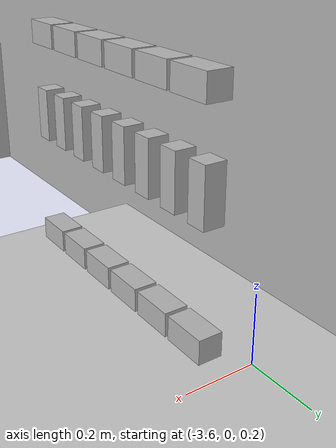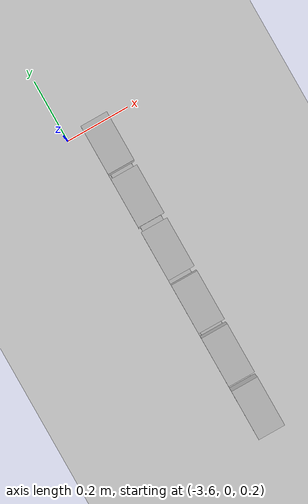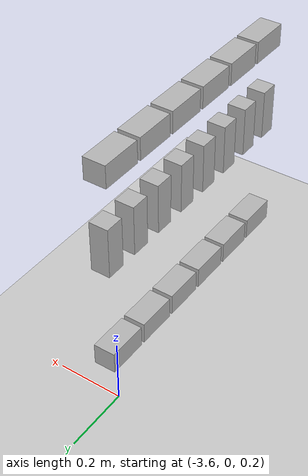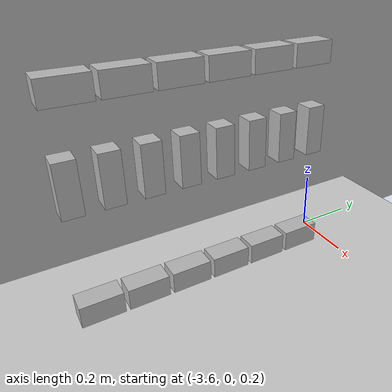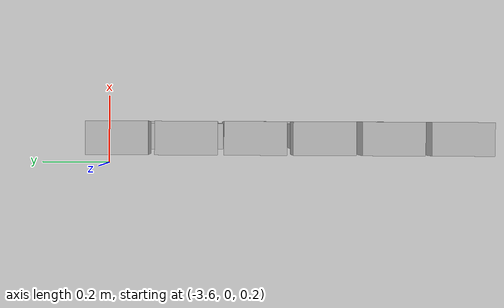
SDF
<sdf version="1.7">
 <world name="default">
  <model name="ground_plane">
   <static>1</static>
   <link name="link">
    <collision name="collision">
     <geometry><plane><normal>0 0 1</normal><size>100 100</size></plane></geometry>
     <surface>
      <contact><collide_bitmask>65535</collide_bitmask></contact>
      <friction><ode><mu>100</mu><mu2>50</mu2></ode></friction>
     </surface>
    </collision>
    <visual name="visual">
     <cast_shadows>0</cast_shadows>
     <geometry><plane><normal>0 0 1</normal><size>100 100</size></plane></geometry>
     <material>
      <script><uri>file://media/materials/scripts/gazebo.material</uri><name>Gazebo/Grey</name></script>
     </material>
    </visual>
   </link>
  </model>
  <model name="room_square">
   <link name="link_0">
    <inertial>
     <mass>1</mass>
     <inertia>
      <ixx>0.166667</ixx>
      <ixy>0</ixy>
      <ixz>0</ixz>
      <iyy>0.166667</iyy>
      <iyz>0</iyz>
      <izz>0.166667</izz>
     </inertia>
    </inertial>
    <visual name="visual">
     <geometry><mesh><uri>model://0-blender/room_square.dae</uri><scale>1 1 1</scale></mesh></geometry>
    </visual>
    <collision name="collision">
     <geometry><mesh><uri>model://0-blender/room_square.dae</uri><scale>1 1 1</scale></mesh></geometry>
     <surface>
      <friction>
       <ode><mu>1</mu><mu2>1</mu2><fdir1>0 0 0</fdir1><slip1>0</slip1><slip2>0</slip2></ode>
       <torsional>
        <coefficient>1</coefficient>
        <patch_radius>0</patch_radius>
        <surface_radius>0</surface_radius>
        <use_patch_radius>1</use_patch_radius>
        <ode><slip>0</slip></ode>
       </torsional>
      </friction>
      <bounce><restitution_coefficient>0</restitution_coefficient><threshold>1e+06</threshold></bounce>
      <contact>
       <collide_without_contact>0</collide_without_contact>
       <collide_without_contact_bitmask>1</collide_without_contact_bitmask>
       <collide_bitmask>1</collide_bitmask>
       <ode>
        <soft_cfm>0</soft_cfm>
        <soft_erp>0.2</soft_erp>
        <kp>1e+13</kp>
        <kd>1</kd>
        <max_vel>0.01</max_vel>
        <min_depth>0</min_depth>
       </ode>
       <bullet>
        <split_impulse>1</split_impulse>
        <split_impulse_penetration_threshold>-0.01</split_impulse_penetration_threshold>
        <soft_cfm>0</soft_cfm>
        <soft_erp>0.2</soft_erp>
        <kp>1e+13</kp>
        <kd>1</kd>
       </bullet>
      </contact>
     </surface>
    </collision>
   </link>
   <static>1</static>
  </model>
  <model name="AH_shelf_filled_april">
   <static>1</static>
   <model name="board3">
    <pose>0 0.5 0.9 0 -0 0</pose>
    <static>0</static>
    <link name="AH_thee_mango_tag36_11_00030::link_0">
     <inertial>
      <mass>0.1</mass>
      <inertia><ixx>0.0014</ixx><ixy>0</ixy><ixz>0</ixz><iyy>0.0014</iyy><iyz>0</iyz><izz>0.0028</izz></inertia>
     </inertial>
     <pose>0.142857 0 0 0 -0 1.57</pose>
     <visual name="visual">
      <geometry>
       <mesh>
        <uri>model://AH_thee_mango/AH_thee_mango_tag36_11_00030/AH_thee_mango_tag36_11_00030.dae</uri>
        <scale>1 1 1</scale>
       </mesh>
      </geometry>
     </visual>
     <collision name="collision">
      <geometry>
       <mesh>
        <uri>model://AH_thee_mango/AH_thee_mango_tag36_11_00030/AH_thee_mango_tag36_11_00030.dae</uri>
        <scale>1 1 1</scale>
       </mesh>
      </geometry>
      <surface>
       <friction>
        <ode><mu>1</mu><mu2>1</mu2><fdir1>0 0 0</fdir1><slip1>0</slip1><slip2>0</slip2></ode>
        <torsional>
         <coefficient>1</coefficient>
         <patch_radius>0</patch_radius>
         <surface_radius>0</surface_radius>
         <use_patch_radius>1</use_patch_radius>
         <ode><slip>0</slip></ode>
        </torsional>
       </friction>
       <bounce><restitution_coefficient>0</restitution_coefficient><threshold>1e+06</threshold></bounce>
       <contact>
        <collide_without_contact>0</collide_without_contact>
        <collide_without_contact_bitmask>1</collide_without_contact_bitmask>
        <collide_bitmask>1</collide_bitmask>
        <ode>
         <soft_cfm>0</soft_cfm>
         <soft_erp>0.2</soft_erp>
         <kp>1e+13</kp>
         <kd>1</kd>
         <max_vel>0.01</max_vel>
         <min_depth>0</min_depth>
        </ode>
        <bullet>
         <split_impulse>1</split_impulse>
         <split_impulse_penetration_threshold>-0.01</split_impulse_penetration_threshold>
         <soft_cfm>0</soft_cfm>
         <soft_erp>0.2</soft_erp>
         <kp>1e+13</kp>
         <kd>1</kd>
        </bullet>
       </contact>
      </surface>
     </collision>
    </link>
    <static>0</static>
    <link name="AH_thee_mango_tag36_11_00031::link_0">
     <inertial>
      <mass>0.1</mass>
      <inertia><ixx>0.0014</ixx><ixy>0</ixy><ixz>0</ixz><iyy>0.0014</iyy><iyz>0</iyz><izz>0.0028</izz></inertia>
     </inertial>
     <pose>0.285714 0 0 0 -0 1.57</pose>
     <visual name="visual">
      <geometry>
       <mesh>
        <uri>model://AH_thee_mango/AH_thee_mango_tag36_11_00031/AH_thee_mango_tag36_11_00031.dae</uri>
        <scale>1 1 1</scale>
       </mesh>
      </geometry>
     </visual>
     <collision name="collision">
      <geometry>
       <mesh>
        <uri>model://AH_thee_mango/AH_thee_mango_tag36_11_00031/AH_thee_mango_tag36_11_00031.dae</uri>
        <scale>1 1 1</scale>
       </mesh>
      </geometry>
      <surface>
       <friction>
        <ode><mu>1</mu><mu2>1</mu2><fdir1>0 0 0</fdir1><slip1>0</slip1><slip2>0</slip2></ode>
        <torsional>
         <coefficient>1</coefficient>
         <patch_radius>0</patch_radius>
         <surface_radius>0</surface_radius>
         <use_patch_radius>1</use_patch_radius>
         <ode><slip>0</slip></ode>
        </torsional>
       </friction>
       <bounce><restitution_coefficient>0</restitution_coefficient><threshold>1e+06</threshold></bounce>
       <contact>
        <collide_without_contact>0</collide_without_contact>
        <collide_without_contact_bitmask>1</collide_without_contact_bitmask>
        <collide_bitmask>1</collide_bitmask>
        <ode>
         <soft_cfm>0</soft_cfm>
         <soft_erp>0.2</soft_erp>
         <kp>1e+13</kp>
         <kd>1</kd>
         <max_vel>0.01</max_vel>
         <min_depth>0</min_depth>
        </ode>
        <bullet>
         <split_impulse>1</split_impulse>
         <split_impulse_penetration_threshold>-0.01</split_impulse_penetration_threshold>
         <soft_cfm>0</soft_cfm>
         <soft_erp>0.2</soft_erp>
         <kp>1e+13</kp>
         <kd>1</kd>
        </bullet>
       </contact>
      </surface>
     </collision>
    </link>
    <static>0</static>
    <link name="AH_thee_mango_tag36_11_00032::link_0">
     <inertial>
      <mass>0.1</mass>
      <inertia><ixx>0.0014</ixx><ixy>0</ixy><ixz>0</ixz><iyy>0.0014</iyy><iyz>0</iyz><izz>0.0028</izz></inertia>
     </inertial>
     <pose>0.428571 0 0 0 -0 1.57</pose>
     <visual name="visual">
      <geometry>
       <mesh>
        <uri>model://AH_thee_mango/AH_thee_mango_tag36_11_00032/AH_thee_mango_tag36_11_00032.dae</uri>
        <scale>1 1 1</scale>
       </mesh>
      </geometry>
     </visual>
     <collision name="collision">
      <geometry>
       <mesh>
        <uri>model://AH_thee_mango/AH_thee_mango_tag36_11_00032/AH_thee_mango_tag36_11_00032.dae</uri>
        <scale>1 1 1</scale>
       </mesh>
      </geometry>
      <surface>
       <friction>
        <ode><mu>1</mu><mu2>1</mu2><fdir1>0 0 0</fdir1><slip1>0</slip1><slip2>0</slip2></ode>
        <torsional>
         <coefficient>1</coefficient>
         <patch_radius>0</patch_radius>
         <surface_radius>0</surface_radius>
         <use_patch_radius>1</use_patch_radius>
         <ode><slip>0</slip></ode>
        </torsional>
       </friction>
       <bounce><restitution_coefficient>0</restitution_coefficient><threshold>1e+06</threshold></bounce>
       <contact>
        <collide_without_contact>0</collide_without_contact>
        <collide_without_contact_bitmask>1</collide_without_contact_bitmask>
        <collide_bitmask>1</collide_bitmask>
        <ode>
         <soft_cfm>0</soft_cfm>
         <soft_erp>0.2</soft_erp>
         <kp>1e+13</kp>
         <kd>1</kd>
         <max_vel>0.01</max_vel>
         <min_depth>0</min_depth>
        </ode>
        <bullet>
         <split_impulse>1</split_impulse>
         <split_impulse_penetration_threshold>-0.01</split_impulse_penetration_threshold>
         <soft_cfm>0</soft_cfm>
         <soft_erp>0.2</soft_erp>
         <kp>1e+13</kp>
         <kd>1</kd>
        </bullet>
       </contact>
      </surface>
     </collision>
    </link>
    <static>0</static>
    <link name="AH_thee_mango_tag36_11_00033::link_0">
     <inertial>
      <mass>0.1</mass>
      <inertia><ixx>0.0014</ixx><ixy>0</ixy><ixz>0</ixz><iyy>0.0014</iyy><iyz>0</iyz><izz>0.0028</izz></inertia>
     </inertial>
     <pose>0.571429 0 0 0 -0 1.57</pose>
     <visual name="visual">
      <geometry>
       <mesh>
        <uri>model://AH_thee_mango/AH_thee_mango_tag36_11_00033/AH_thee_mango_tag36_11_00033.dae</uri>
        <scale>1 1 1</scale>
       </mesh>
      </geometry>
     </visual>
     <collision name="collision">
      <geometry>
       <mesh>
        <uri>model://AH_thee_mango/AH_thee_mango_tag36_11_00033/AH_thee_mango_tag36_11_00033.dae</uri>
        <scale>1 1 1</scale>
       </mesh>
      </geometry>
      <surface>
       <friction>
        <ode><mu>1</mu><mu2>1</mu2><fdir1>0 0 0</fdir1><slip1>0</slip1><slip2>0</slip2></ode>
        <torsional>
         <coefficient>1</coefficient>
         <patch_radius>0</patch_radius>
         <surface_radius>0</surface_radius>
         <use_patch_radius>1</use_patch_radius>
         <ode><slip>0</slip></ode>
        </torsional>
       </friction>
       <bounce><restitution_coefficient>0</restitution_coefficient><threshold>1e+06</threshold></bounce>
       <contact>
        <collide_without_contact>0</collide_without_contact>
        <collide_without_contact_bitmask>1</collide_without_contact_bitmask>
        <collide_bitmask>1</collide_bitmask>
        <ode>
         <soft_cfm>0</soft_cfm>
         <soft_erp>0.2</soft_erp>
         <kp>1e+13</kp>
         <kd>1</kd>
         <max_vel>0.01</max_vel>
         <min_depth>0</min_depth>
        </ode>
        <bullet>
         <split_impulse>1</split_impulse>
         <split_impulse_penetration_threshold>-0.01</split_impulse_penetration_threshold>
         <soft_cfm>0</soft_cfm>
         <soft_erp>0.2</soft_erp>
         <kp>1e+13</kp>
         <kd>1</kd>
        </bullet>
       </contact>
      </surface>
     </collision>
    </link>
    <static>0</static>
    <link name="AH_thee_mango_tag36_11_00034::link_0">
     <inertial>
      <mass>0.1</mass>
      <inertia><ixx>0.0014</ixx><ixy>0</ixy><ixz>0</ixz><iyy>0.0014</iyy><iyz>0</iyz><izz>0.0028</izz></inertia>
     </inertial>
     <pose>0.714286 0 0 0 -0 1.57</pose>
     <visual name="visual">
      <geometry>
       <mesh>
        <uri>model://AH_thee_mango/AH_thee_mango_tag36_11_00034/AH_thee_mango_tag36_11_00034.dae</uri>
        <scale>1 1 1</scale>
       </mesh>
      </geometry>
     </visual>
     <collision name="collision">
      <geometry>
       <mesh>
        <uri>model://AH_thee_mango/AH_thee_mango_tag36_11_00034/AH_thee_mango_tag36_11_00034.dae</uri>
        <scale>1 1 1</scale>
       </mesh>
      </geometry>
      <surface>
       <friction>
        <ode><mu>1</mu><mu2>1</mu2><fdir1>0 0 0</fdir1><slip1>0</slip1><slip2>0</slip2></ode>
        <torsional>
         <coefficient>1</coefficient>
         <patch_radius>0</patch_radius>
         <surface_radius>0</surface_radius>
         <use_patch_radius>1</use_patch_radius>
         <ode><slip>0</slip></ode>
        </torsional>
       </friction>
       <bounce><restitution_coefficient>0</restitution_coefficient><threshold>1e+06</threshold></bounce>
       <contact>
        <collide_without_contact>0</collide_without_contact>
        <collide_without_contact_bitmask>1</collide_without_contact_bitmask>
        <collide_bitmask>1</collide_bitmask>
        <ode>
         <soft_cfm>0</soft_cfm>
         <soft_erp>0.2</soft_erp>
         <kp>1e+13</kp>
         <kd>1</kd>
         <max_vel>0.01</max_vel>
         <min_depth>0</min_depth>
        </ode>
        <bullet>
         <split_impulse>1</split_impulse>
         <split_impulse_penetration_threshold>-0.01</split_impulse_penetration_threshold>
         <soft_cfm>0</soft_cfm>
         <soft_erp>0.2</soft_erp>
         <kp>1e+13</kp>
         <kd>1</kd>
        </bullet>
       </contact>
      </surface>
     </collision>
    </link>
    <static>0</static>
    <link name="AH_thee_mango_tag36_11_00035::link_0">
     <inertial>
      <mass>0.1</mass>
      <inertia><ixx>0.0014</ixx><ixy>0</ixy><ixz>0</ixz><iyy>0.0014</iyy><iyz>0</iyz><izz>0.0028</izz></inertia>
     </inertial>
     <pose>0.857143 0 0 0 -0 1.57</pose>
     <visual name="visual">
      <geometry>
       <mesh>
        <uri>model://AH_thee_mango/AH_thee_mango_tag36_11_00035/AH_thee_mango_tag36_11_00035.dae</uri>
        <scale>1 1 1</scale>
       </mesh>
      </geometry>
     </visual>
     <collision name="collision">
      <geometry>
       <mesh>
        <uri>model://AH_thee_mango/AH_thee_mango_tag36_11_00035/AH_thee_mango_tag36_11_00035.dae</uri>
        <scale>1 1 1</scale>
       </mesh>
      </geometry>
      <surface>
       <friction>
        <ode><mu>1</mu><mu2>1</mu2><fdir1>0 0 0</fdir1><slip1>0</slip1><slip2>0</slip2></ode>
        <torsional>
         <coefficient>1</coefficient>
         <patch_radius>0</patch_radius>
         <surface_radius>0</surface_radius>
         <use_patch_radius>1</use_patch_radius>
         <ode><slip>0</slip></ode>
        </torsional>
       </friction>
       <bounce><restitution_coefficient>0</restitution_coefficient><threshold>1e+06</threshold></bounce>
       <contact>
        <collide_without_contact>0</collide_without_contact>
        <collide_without_contact_bitmask>1</collide_without_contact_bitmask>
        <collide_bitmask>1</collide_bitmask>
        <ode>
         <soft_cfm>0</soft_cfm>
         <soft_erp>0.2</soft_erp>
         <kp>1e+13</kp>
         <kd>1</kd>
         <max_vel>0.01</max_vel>
         <min_depth>0</min_depth>
        </ode>
        <bullet>
         <split_impulse>1</split_impulse>
         <split_impulse_penetration_threshold>-0.01</split_impulse_penetration_threshold>
         <soft_cfm>0</soft_cfm>
         <soft_erp>0.2</soft_erp>
         <kp>1e+13</kp>
         <kd>1</kd>
        </bullet>
       </contact>
      </surface>
     </collision>
    </link>
   </model>
   <model name="board4">
    <pose>0 0.5 0.65 0 -0 0</pose>
    <static>0</static>
    <link name="AH_hagelslag_melk_tag36_11_00000::link_0">
     <inertial>
      <mass>0.1</mass>
      <inertia><ixx>0.0014</ixx><ixy>0</ixy><ixz>0</ixz><iyy>0.0014</iyy><iyz>0</iyz><izz>0.0028</izz></inertia>
     </inertial>
     <pose>0.111111 0 0 0 -0 1.57</pose>
     <visual name="visual">
      <geometry>
       <mesh>
        <uri>model://AH_hagelslag_melk/AH_hagelslag_melk_tag36_11_00000/AH_hagelslag_melk_tag36_11_00000.dae</uri>
        <scale>1 1 1</scale>
       </mesh>
      </geometry>
     </visual>
     <collision name="collision">
      <geometry>
       <mesh>
        <uri>model://AH_hagelslag_melk/AH_hagelslag_melk_tag36_11_00000/AH_hagelslag_melk_tag36_11_00000.dae</uri>
        <scale>1 1 1</scale>
       </mesh>
      </geometry>
      <surface>
       <friction>
        <ode><mu>1</mu><mu2>1</mu2><fdir1>0 0 0</fdir1><slip1>0</slip1><slip2>0</slip2></ode>
        <torsional>
         <coefficient>1</coefficient>
         <patch_radius>0</patch_radius>
         <surface_radius>0</surface_radius>
         <use_patch_radius>1</use_patch_radius>
         <ode><slip>0</slip></ode>
        </torsional>
       </friction>
       <bounce><restitution_coefficient>0</restitution_coefficient><threshold>1e+06</threshold></bounce>
       <contact>
        <collide_without_contact>0</collide_without_contact>
        <collide_without_contact_bitmask>1</collide_without_contact_bitmask>
        <collide_bitmask>1</collide_bitmask>
        <ode>
         <soft_cfm>0</soft_cfm>
         <soft_erp>0.2</soft_erp>
         <kp>1e+13</kp>
         <kd>1</kd>
         <max_vel>0.01</max_vel>
         <min_depth>0</min_depth>
        </ode>
        <bullet>
         <split_impulse>1</split_impulse>
         <split_impulse_penetration_threshold>-0.01</split_impulse_penetration_threshold>
         <soft_cfm>0</soft_cfm>
         <soft_erp>0.2</soft_erp>
         <kp>1e+13</kp>
         <kd>1</kd>
        </bullet>
       </contact>
      </surface>
     </collision>
    </link>
    <static>0</static>
    <link name="AH_hagelslag_melk_tag36_11_00001::link_0">
     <inertial>
      <mass>0.1</mass>
      <inertia><ixx>0.0014</ixx><ixy>0</ixy><ixz>0</ixz><iyy>0.0014</iyy><iyz>0</iyz><izz>0.0028</izz></inertia>
     </inertial>
     <pose>0.222222 0 0 0 -0 1.57</pose>
     <visual name="visual">
      <geometry>
       <mesh>
        <uri>model://AH_hagelslag_melk/AH_hagelslag_melk_tag36_11_00001/AH_hagelslag_melk_tag36_11_00001.dae</uri>
        <scale>1 1 1</scale>
       </mesh>
      </geometry>
     </visual>
     <collision name="collision">
      <geometry>
       <mesh>
        <uri>model://AH_hagelslag_melk/AH_hagelslag_melk_tag36_11_00001/AH_hagelslag_melk_tag36_11_00001.dae</uri>
        <scale>1 1 1</scale>
       </mesh>
      </geometry>
      <surface>
       <friction>
        <ode><mu>1</mu><mu2>1</mu2><fdir1>0 0 0</fdir1><slip1>0</slip1><slip2>0</slip2></ode>
        <torsional>
         <coefficient>1</coefficient>
         <patch_radius>0</patch_radius>
         <surface_radius>0</surface_radius>
         <use_patch_radius>1</use_patch_radius>
         <ode><slip>0</slip></ode>
        </torsional>
       </friction>
       <bounce><restitution_coefficient>0</restitution_coefficient><threshold>1e+06</threshold></bounce>
       <contact>
        <collide_without_contact>0</collide_without_contact>
        <collide_without_contact_bitmask>1</collide_without_contact_bitmask>
        <collide_bitmask>1</collide_bitmask>
        <ode>
         <soft_cfm>0</soft_cfm>
         <soft_erp>0.2</soft_erp>
         <kp>1e+13</kp>
         <kd>1</kd>
         <max_vel>0.01</max_vel>
         <min_depth>0</min_depth>
        </ode>
        <bullet>
         <split_impulse>1</split_impulse>
         <split_impulse_penetration_threshold>-0.01</split_impulse_penetration_threshold>
         <soft_cfm>0</soft_cfm>
         <soft_erp>0.2</soft_erp>
         <kp>1e+13</kp>
         <kd>1</kd>
        </bullet>
       </contact>
      </surface>
     </collision>
    </link>
    <static>0</static>
    <link name="AH_hagelslag_melk_tag36_11_00002::link_0">
     <inertial>
      <mass>0.1</mass>
      <inertia><ixx>0.0014</ixx><ixy>0</ixy><ixz>0</ixz><iyy>0.0014</iyy><iyz>0</iyz><izz>0.0028</izz></inertia>
     </inertial>
     <pose>0.333333 0 0 0 -0 1.57</pose>
     <visual name="visual">
      <geometry>
       <mesh>
        <uri>model://AH_hagelslag_melk/AH_hagelslag_melk_tag36_11_00002/AH_hagelslag_melk_tag36_11_00002.dae</uri>
        <scale>1 1 1</scale>
       </mesh>
      </geometry>
     </visual>
     <collision name="collision">
      <geometry>
       <mesh>
        <uri>model://AH_hagelslag_melk/AH_hagelslag_melk_tag36_11_00002/AH_hagelslag_melk_tag36_11_00002.dae</uri>
        <scale>1 1 1</scale>
       </mesh>
      </geometry>
      <surface>
       <friction>
        <ode><mu>1</mu><mu2>1</mu2><fdir1>0 0 0</fdir1><slip1>0</slip1><slip2>0</slip2></ode>
        <torsional>
         <coefficient>1</coefficient>
         <patch_radius>0</patch_radius>
         <surface_radius>0</surface_radius>
         <use_patch_radius>1</use_patch_radius>
         <ode><slip>0</slip></ode>
        </torsional>
       </friction>
       <bounce><restitution_coefficient>0</restitution_coefficient><threshold>1e+06</threshold></bounce>
       <contact>
        <collide_without_contact>0</collide_without_contact>
        <collide_without_contact_bitmask>1</collide_without_contact_bitmask>
        <collide_bitmask>1</collide_bitmask>
        <ode>
         <soft_cfm>0</soft_cfm>
         <soft_erp>0.2</soft_erp>
         <kp>1e+13</kp>
         <kd>1</kd>
         <max_vel>0.01</max_vel>
         <min_depth>0</min_depth>
        </ode>
        <bullet>
         <split_impulse>1</split_impulse>
         <split_impulse_penetration_threshold>-0.01</split_impulse_penetration_threshold>
         <soft_cfm>0</soft_cfm>
         <soft_erp>0.2</soft_erp>
         <kp>1e+13</kp>
         <kd>1</kd>
        </bullet>
       </contact>
      </surface>
     </collision>
    </link>
    <static>0</static>
    <link name="AH_hagelslag_melk_tag36_11_00003::link_0">
     <inertial>
      <mass>0.1</mass>
      <inertia><ixx>0.0014</ixx><ixy>0</ixy><ixz>0</ixz><iyy>0.0014</iyy><iyz>0</iyz><izz>0.0028</izz></inertia>
     </inertial>
     <pose>0.444444 0 0 0 -0 1.57</pose>
     <visual name="visual">
      <geometry>
       <mesh>
        <uri>model://AH_hagelslag_melk/AH_hagelslag_melk_tag36_11_00003/AH_hagelslag_melk_tag36_11_00003.dae</uri>
        <scale>1 1 1</scale>
       </mesh>
      </geometry>
     </visual>
     <collision name="collision">
      <geometry>
       <mesh>
        <uri>model://AH_hagelslag_melk/AH_hagelslag_melk_tag36_11_00003/AH_hagelslag_melk_tag36_11_00003.dae</uri>
        <scale>1 1 1</scale>
       </mesh>
      </geometry>
      <surface>
       <friction>
        <ode><mu>1</mu><mu2>1</mu2><fdir1>0 0 0</fdir1><slip1>0</slip1><slip2>0</slip2></ode>
        <torsional>
         <coefficient>1</coefficient>
         <patch_radius>0</patch_radius>
         <surface_radius>0</surface_radius>
         <use_patch_radius>1</use_patch_radius>
         <ode><slip>0</slip></ode>
        </torsional>
       </friction>
       <bounce><restitution_coefficient>0</restitution_coefficient><threshold>1e+06</threshold></bounce>
       <contact>
        <collide_without_contact>0</collide_without_contact>
        <collide_without_contact_bitmask>1</collide_without_contact_bitmask>
        <collide_bitmask>1</collide_bitmask>
        <ode>
         <soft_cfm>0</soft_cfm>
         <soft_erp>0.2</soft_erp>
         <kp>1e+13</kp>
         <kd>1</kd>
         <max_vel>0.01</max_vel>
         <min_depth>0</min_depth>
        </ode>
        <bullet>
         <split_impulse>1</split_impulse>
         <split_impulse_penetration_threshold>-0.01</split_impulse_penetration_threshold>
         <soft_cfm>0</soft_cfm>
         <soft_erp>0.2</soft_erp>
         <kp>1e+13</kp>
         <kd>1</kd>
        </bullet>
       </contact>
      </surface>
     </collision>
    </link>
    <static>0</static>
    <link name="AH_hagelslag_melk_tag36_11_00004::link_0">
     <inertial>
      <mass>0.1</mass>
      <inertia><ixx>0.0014</ixx><ixy>0</ixy><ixz>0</ixz><iyy>0.0014</iyy><iyz>0</iyz><izz>0.0028</izz></inertia>
     </inertial>
     <pose>0.555556 0 0 0 -0 1.57</pose>
     <visual name="visual">
      <geometry>
       <mesh>
        <uri>model://AH_hagelslag_melk/AH_hagelslag_melk_tag36_11_00004/AH_hagelslag_melk_tag36_11_00004.dae</uri>
        <scale>1 1 1</scale>
       </mesh>
      </geometry>
     </visual>
     <collision name="collision">
      <geometry>
       <mesh>
        <uri>model://AH_hagelslag_melk/AH_hagelslag_melk_tag36_11_00004/AH_hagelslag_melk_tag36_11_00004.dae</uri>
        <scale>1 1 1</scale>
       </mesh>
      </geometry>
      <surface>
       <friction>
        <ode><mu>1</mu><mu2>1</mu2><fdir1>0 0 0</fdir1><slip1>0</slip1><slip2>0</slip2></ode>
        <torsional>
         <coefficient>1</coefficient>
         <patch_radius>0</patch_radius>
         <surface_radius>0</surface_radius>
         <use_patch_radius>1</use_patch_radius>
         <ode><slip>0</slip></ode>
        </torsional>
       </friction>
       <bounce><restitution_coefficient>0</restitution_coefficient><threshold>1e+06</threshold></bounce>
       <contact>
        <collide_without_contact>0</collide_without_contact>
        <collide_without_contact_bitmask>1</collide_without_contact_bitmask>
        <collide_bitmask>1</collide_bitmask>
        <ode>
         <soft_cfm>0</soft_cfm>
         <soft_erp>0.2</soft_erp>
         <kp>1e+13</kp>
         <kd>1</kd>
         <max_vel>0.01</max_vel>
         <min_depth>0</min_depth>
        </ode>
        <bullet>
         <split_impulse>1</split_impulse>
         <split_impulse_penetration_threshold>-0.01</split_impulse_penetration_threshold>
         <soft_cfm>0</soft_cfm>
         <soft_erp>0.2</soft_erp>
         <kp>1e+13</kp>
         <kd>1</kd>
        </bullet>
       </contact>
      </surface>
     </collision>
    </link>
    <static>0</static>
    <link name="AH_hagelslag_melk_tag36_11_00005::link_0">
     <inertial>
      <mass>0.1</mass>
      <inertia><ixx>0.0014</ixx><ixy>0</ixy><ixz>0</ixz><iyy>0.0014</iyy><iyz>0</iyz><izz>0.0028</izz></inertia>
     </inertial>
     <pose>0.666667 0 0 0 -0 1.57</pose>
     <visual name="visual">
      <geometry>
       <mesh>
        <uri>model://AH_hagelslag_melk/AH_hagelslag_melk_tag36_11_00005/AH_hagelslag_melk_tag36_11_00005.dae</uri>
        <scale>1 1 1</scale>
       </mesh>
      </geometry>
     </visual>
     <collision name="collision">
      <geometry>
       <mesh>
        <uri>model://AH_hagelslag_melk/AH_hagelslag_melk_tag36_11_00005/AH_hagelslag_melk_tag36_11_00005.dae</uri>
        <scale>1 1 1</scale>
       </mesh>
      </geometry>
      <surface>
       <friction>
        <ode><mu>1</mu><mu2>1</mu2><fdir1>0 0 0</fdir1><slip1>0</slip1><slip2>0</slip2></ode>
        <torsional>
         <coefficient>1</coefficient>
         <patch_radius>0</patch_radius>
         <surface_radius>0</surface_radius>
         <use_patch_radius>1</use_patch_radius>
         <ode><slip>0</slip></ode>
        </torsional>
       </friction>
       <bounce><restitution_coefficient>0</restitution_coefficient><threshold>1e+06</threshold></bounce>
       <contact>
        <collide_without_contact>0</collide_without_contact>
        <collide_without_contact_bitmask>1</collide_without_contact_bitmask>
        <collide_bitmask>1</collide_bitmask>
        <ode>
         <soft_cfm>0</soft_cfm>
         <soft_erp>0.2</soft_erp>
         <kp>1e+13</kp>
         <kd>1</kd>
         <max_vel>0.01</max_vel>
         <min_depth>0</min_depth>
        </ode>
        <bullet>
         <split_impulse>1</split_impulse>
         <split_impulse_penetration_threshold>-0.01</split_impulse_penetration_threshold>
         <soft_cfm>0</soft_cfm>
         <soft_erp>0.2</soft_erp>
         <kp>1e+13</kp>
         <kd>1</kd>
        </bullet>
       </contact>
      </surface>
     </collision>
    </link>
    <static>0</static>
    <link name="AH_hagelslag_melk_tag36_11_00006::link_0">
     <inertial>
      <mass>0.1</mass>
      <inertia><ixx>0.0014</ixx><ixy>0</ixy><ixz>0</ixz><iyy>0.0014</iyy><iyz>0</iyz><izz>0.0028</izz></inertia>
     </inertial>
     <pose>0.777778 0 0 0 -0 1.57</pose>
     <visual name="visual">
      <geometry>
       <mesh>
        <uri>model://AH_hagelslag_melk/AH_hagelslag_melk_tag36_11_00006/AH_hagelslag_melk_tag36_11_00006.dae</uri>
        <scale>1 1 1</scale>
       </mesh>
      </geometry>
     </visual>
     <collision name="collision">
      <geometry>
       <mesh>
        <uri>model://AH_hagelslag_melk/AH_hagelslag_melk_tag36_11_00006/AH_hagelslag_melk_tag36_11_00006.dae</uri>
        <scale>1 1 1</scale>
       </mesh>
      </geometry>
      <surface>
       <friction>
        <ode><mu>1</mu><mu2>1</mu2><fdir1>0 0 0</fdir1><slip1>0</slip1><slip2>0</slip2></ode>
        <torsional>
         <coefficient>1</coefficient>
         <patch_radius>0</patch_radius>
         <surface_radius>0</surface_radius>
         <use_patch_radius>1</use_patch_radius>
         <ode><slip>0</slip></ode>
        </torsional>
       </friction>
       <bounce><restitution_coefficient>0</restitution_coefficient><threshold>1e+06</threshold></bounce>
       <contact>
        <collide_without_contact>0</collide_without_contact>
        <collide_without_contact_bitmask>1</collide_without_contact_bitmask>
        <collide_bitmask>1</collide_bitmask>
        <ode>
         <soft_cfm>0</soft_cfm>
         <soft_erp>0.2</soft_erp>
         <kp>1e+13</kp>
         <kd>1</kd>
         <max_vel>0.01</max_vel>
         <min_depth>0</min_depth>
        </ode>
        <bullet>
         <split_impulse>1</split_impulse>
         <split_impulse_penetration_threshold>-0.01</split_impulse_penetration_threshold>
         <soft_cfm>0</soft_cfm>
         <soft_erp>0.2</soft_erp>
         <kp>1e+13</kp>
         <kd>1</kd>
        </bullet>
       </contact>
      </surface>
     </collision>
    </link>
    <static>0</static>
    <link name="AH_hagelslag_melk_tag36_11_00007::link_0">
     <inertial>
      <mass>0.1</mass>
      <inertia><ixx>0.0014</ixx><ixy>0</ixy><ixz>0</ixz><iyy>0.0014</iyy><iyz>0</iyz><izz>0.0028</izz></inertia>
     </inertial>
     <pose>0.888889 0 0 0 -0 1.57</pose>
     <visual name="visual">
      <geometry>
       <mesh>
        <uri>model://AH_hagelslag_melk/AH_hagelslag_melk_tag36_11_00007/AH_hagelslag_melk_tag36_11_00007.dae</uri>
        <scale>1 1 1</scale>
       </mesh>
      </geometry>
     </visual>
     <collision name="collision">
      <geometry>
       <mesh>
        <uri>model://AH_hagelslag_melk/AH_hagelslag_melk_tag36_11_00007/AH_hagelslag_melk_tag36_11_00007.dae</uri>
        <scale>1 1 1</scale>
       </mesh>
      </geometry>
      <surface>
       <friction>
        <ode><mu>1</mu><mu2>1</mu2><fdir1>0 0 0</fdir1><slip1>0</slip1><slip2>0</slip2></ode>
        <torsional>
         <coefficient>1</coefficient>
         <patch_radius>0</patch_radius>
         <surface_radius>0</surface_radius>
         <use_patch_radius>1</use_patch_radius>
         <ode><slip>0</slip></ode>
        </torsional>
       </friction>
       <bounce><restitution_coefficient>0</restitution_coefficient><threshold>1e+06</threshold></bounce>
       <contact>
        <collide_without_contact>0</collide_without_contact>
        <collide_without_contact_bitmask>1</collide_without_contact_bitmask>
        <collide_bitmask>1</collide_bitmask>
        <ode>
         <soft_cfm>0</soft_cfm>
         <soft_erp>0.2</soft_erp>
         <kp>1e+13</kp>
         <kd>1</kd>
         <max_vel>0.01</max_vel>
         <min_depth>0</min_depth>
        </ode>
        <bullet>
         <split_impulse>1</split_impulse>
         <split_impulse_penetration_threshold>-0.01</split_impulse_penetration_threshold>
         <soft_cfm>0</soft_cfm>
         <soft_erp>0.2</soft_erp>
         <kp>1e+13</kp>
         <kd>1</kd>
        </bullet>
       </contact>
      </surface>
     </collision>
    </link>
   </model>
   <model name="board5">
    <pose>0 0.5 0.25 0 -0 0</pose>
    <static>0</static>
    <link name="AH_thee_bosvruchten_tag36_11_00045::link_0">
     <inertial>
      <mass>0.1</mass>
      <inertia><ixx>0.0014</ixx><ixy>0</ixy><ixz>0</ixz><iyy>0.0014</iyy><iyz>0</iyz><izz>0.0028</izz></inertia>
     </inertial>
     <pose>0.142857 0 0 0 -0 1.57</pose>
     <visual name="visual">
      <geometry>
       <mesh>
        <uri>model://AH_thee_bosvruchten/AH_thee_bosvruchten_tag36_11_00045/AH_thee_bosvruchten_tag36_11_00045.dae</uri>
        <scale>1 1 1</scale>
       </mesh>
      </geometry>
     </visual>
     <collision name="collision">
      <geometry>
       <mesh>
        <uri>model://AH_thee_bosvruchten/AH_thee_bosvruchten_tag36_11_00045/AH_thee_bosvruchten_tag36_11_00045.dae</uri>
        <scale>1 1 1</scale>
       </mesh>
      </geometry>
      <surface>
       <friction>
        <ode><mu>1</mu><mu2>1</mu2><fdir1>0 0 0</fdir1><slip1>0</slip1><slip2>0</slip2></ode>
        <torsional>
         <coefficient>1</coefficient>
         <patch_radius>0</patch_radius>
         <surface_radius>0</surface_radius>
         <use_patch_radius>1</use_patch_radius>
         <ode><slip>0</slip></ode>
        </torsional>
       </friction>
       <bounce><restitution_coefficient>0</restitution_coefficient><threshold>1e+06</threshold></bounce>
       <contact>
        <collide_without_contact>0</collide_without_contact>
        <collide_without_contact_bitmask>1</collide_without_contact_bitmask>
        <collide_bitmask>1</collide_bitmask>
        <ode>
         <soft_cfm>0</soft_cfm>
         <soft_erp>0.2</soft_erp>
         <kp>1e+13</kp>
         <kd>1</kd>
         <max_vel>0.01</max_vel>
         <min_depth>0</min_depth>
        </ode>
        <bullet>
         <split_impulse>1</split_impulse>
         <split_impulse_penetration_threshold>-0.01</split_impulse_penetration_threshold>
         <soft_cfm>0</soft_cfm>
         <soft_erp>0.2</soft_erp>
         <kp>1e+13</kp>
         <kd>1</kd>
        </bullet>
       </contact>
      </surface>
     </collision>
    </link>
    <static>0</static>
    <link name="AH_thee_bosvruchten_tag36_11_00046::link_0">
     <inertial>
      <mass>0.1</mass>
      <inertia><ixx>0.0014</ixx><ixy>0</ixy><ixz>0</ixz><iyy>0.0014</iyy><iyz>0</iyz><izz>0.0028</izz></inertia>
     </inertial>
     <pose>0.285714 0 0 0 -0 1.57</pose>
     <visual name="visual">
      <geometry>
       <mesh>
        <uri>model://AH_thee_bosvruchten/AH_thee_bosvruchten_tag36_11_00046/AH_thee_bosvruchten_tag36_11_00046.dae</uri>
        <scale>1 1 1</scale>
       </mesh>
      </geometry>
     </visual>
     <collision name="collision">
      <geometry>
       <mesh>
        <uri>model://AH_thee_bosvruchten/AH_thee_bosvruchten_tag36_11_00046/AH_thee_bosvruchten_tag36_11_00046.dae</uri>
        <scale>1 1 1</scale>
       </mesh>
      </geometry>
      <surface>
       <friction>
        <ode><mu>1</mu><mu2>1</mu2><fdir1>0 0 0</fdir1><slip1>0</slip1><slip2>0</slip2></ode>
        <torsional>
         <coefficient>1</coefficient>
         <patch_radius>0</patch_radius>
         <surface_radius>0</surface_radius>
         <use_patch_radius>1</use_patch_radius>
         <ode><slip>0</slip></ode>
        </torsional>
       </friction>
       <bounce><restitution_coefficient>0</restitution_coefficient><threshold>1e+06</threshold></bounce>
       <contact>
        <collide_without_contact>0</collide_without_contact>
        <collide_without_contact_bitmask>1</collide_without_contact_bitmask>
        <collide_bitmask>1</collide_bitmask>
        <ode>
         <soft_cfm>0</soft_cfm>
         <soft_erp>0.2</soft_erp>
         <kp>1e+13</kp>
         <kd>1</kd>
         <max_vel>0.01</max_vel>
         <min_depth>0</min_depth>
        </ode>
        <bullet>
         <split_impulse>1</split_impulse>
         <split_impulse_penetration_threshold>-0.01</split_impulse_penetration_threshold>
         <soft_cfm>0</soft_cfm>
         <soft_erp>0.2</soft_erp>
         <kp>1e+13</kp>
         <kd>1</kd>
        </bullet>
       </contact>
      </surface>
     </collision>
    </link>
    <static>0</static>
    <link name="AH_thee_bosvruchten_tag36_11_00047::link_0">
     <inertial>
      <mass>0.1</mass>
      <inertia><ixx>0.0014</ixx><ixy>0</ixy><ixz>0</ixz><iyy>0.0014</iyy><iyz>0</iyz><izz>0.0028</izz></inertia>
     </inertial>
     <pose>0.428571 0 0 0 -0 1.57</pose>
     <visual name="visual">
      <geometry>
       <mesh>
        <uri>model://AH_thee_bosvruchten/AH_thee_bosvruchten_tag36_11_00047/AH_thee_bosvruchten_tag36_11_00047.dae</uri>
        <scale>1 1 1</scale>
       </mesh>
      </geometry>
     </visual>
     <collision name="collision">
      <geometry>
       <mesh>
        <uri>model://AH_thee_bosvruchten/AH_thee_bosvruchten_tag36_11_00047/AH_thee_bosvruchten_tag36_11_00047.dae</uri>
        <scale>1 1 1</scale>
       </mesh>
      </geometry>
      <surface>
       <friction>
        <ode><mu>1</mu><mu2>1</mu2><fdir1>0 0 0</fdir1><slip1>0</slip1><slip2>0</slip2></ode>
        <torsional>
         <coefficient>1</coefficient>
         <patch_radius>0</patch_radius>
         <surface_radius>0</surface_radius>
         <use_patch_radius>1</use_patch_radius>
         <ode><slip>0</slip></ode>
        </torsional>
       </friction>
       <bounce><restitution_coefficient>0</restitution_coefficient><threshold>1e+06</threshold></bounce>
       <contact>
        <collide_without_contact>0</collide_without_contact>
        <collide_without_contact_bitmask>1</collide_without_contact_bitmask>
        <collide_bitmask>1</collide_bitmask>
        <ode>
         <soft_cfm>0</soft_cfm>
         <soft_erp>0.2</soft_erp>
         <kp>1e+13</kp>
         <kd>1</kd>
         <max_vel>0.01</max_vel>
         <min_depth>0</min_depth>
        </ode>
        <bullet>
         <split_impulse>1</split_impulse>
         <split_impulse_penetration_threshold>-0.01</split_impulse_penetration_threshold>
         <soft_cfm>0</soft_cfm>
         <soft_erp>0.2</soft_erp>
         <kp>1e+13</kp>
         <kd>1</kd>
        </bullet>
       </contact>
      </surface>
     </collision>
    </link>
    <static>0</static>
    <link name="AH_thee_bosvruchten_tag36_11_00048::link_0">
     <inertial>
      <mass>0.1</mass>
      <inertia><ixx>0.0014</ixx><ixy>0</ixy><ixz>0</ixz><iyy>0.0014</iyy><iyz>0</iyz><izz>0.0028</izz></inertia>
     </inertial>
     <pose>0.571429 0 0 0 -0 1.57</pose>
     <visual name="visual">
      <geometry>
       <mesh>
        <uri>model://AH_thee_bosvruchten/AH_thee_bosvruchten_tag36_11_00048/AH_thee_bosvruchten_tag36_11_00048.dae</uri>
        <scale>1 1 1</scale>
       </mesh>
      </geometry>
     </visual>
     <collision name="collision">
      <geometry>
       <mesh>
        <uri>model://AH_thee_bosvruchten/AH_thee_bosvruchten_tag36_11_00048/AH_thee_bosvruchten_tag36_11_00048.dae</uri>
        <scale>1 1 1</scale>
       </mesh>
      </geometry>
      <surface>
       <friction>
        <ode><mu>1</mu><mu2>1</mu2><fdir1>0 0 0</fdir1><slip1>0</slip1><slip2>0</slip2></ode>
        <torsional>
         <coefficient>1</coefficient>
         <patch_radius>0</patch_radius>
         <surface_radius>0</surface_radius>
         <use_patch_radius>1</use_patch_radius>
         <ode><slip>0</slip></ode>
        </torsional>
       </friction>
       <bounce><restitution_coefficient>0</restitution_coefficient><threshold>1e+06</threshold></bounce>
       <contact>
        <collide_without_contact>0</collide_without_contact>
        <collide_without_contact_bitmask>1</collide_without_contact_bitmask>
        <collide_bitmask>1</collide_bitmask>
        <ode>
         <soft_cfm>0</soft_cfm>
         <soft_erp>0.2</soft_erp>
         <kp>1e+13</kp>
         <kd>1</kd>
         <max_vel>0.01</max_vel>
         <min_depth>0</min_depth>
        </ode>
        <bullet>
         <split_impulse>1</split_impulse>
         <split_impulse_penetration_threshold>-0.01</split_impulse_penetration_threshold>
         <soft_cfm>0</soft_cfm>
         <soft_erp>0.2</soft_erp>
         <kp>1e+13</kp>
         <kd>1</kd>
        </bullet>
       </contact>
      </surface>
     </collision>
    </link>
    <static>0</static>
    <link name="AH_thee_bosvruchten_tag36_11_00049::link_0">
     <inertial>
      <mass>0.1</mass>
      <inertia><ixx>0.0014</ixx><ixy>0</ixy><ixz>0</ixz><iyy>0.0014</iyy><iyz>0</iyz><izz>0.0028</izz></inertia>
     </inertial>
     <pose>0.714286 0 0 0 -0 1.57</pose>
     <visual name="visual">
      <geometry>
       <mesh>
        <uri>model://AH_thee_bosvruchten/AH_thee_bosvruchten_tag36_11_00049/AH_thee_bosvruchten_tag36_11_00049.dae</uri>
        <scale>1 1 1</scale>
       </mesh>
      </geometry>
     </visual>
     <collision name="collision">
      <geometry>
       <mesh>
        <uri>model://AH_thee_bosvruchten/AH_thee_bosvruchten_tag36_11_00049/AH_thee_bosvruchten_tag36_11_00049.dae</uri>
        <scale>1 1 1</scale>
       </mesh>
      </geometry>
      <surface>
       <friction>
        <ode><mu>1</mu><mu2>1</mu2><fdir1>0 0 0</fdir1><slip1>0</slip1><slip2>0</slip2></ode>
        <torsional>
         <coefficient>1</coefficient>
         <patch_radius>0</patch_radius>
         <surface_radius>0</surface_radius>
         <use_patch_radius>1</use_patch_radius>
         <ode><slip>0</slip></ode>
        </torsional>
       </friction>
       <bounce><restitution_coefficient>0</restitution_coefficient><threshold>1e+06</threshold></bounce>
       <contact>
        <collide_without_contact>0</collide_without_contact>
        <collide_without_contact_bitmask>1</collide_without_contact_bitmask>
        <collide_bitmask>1</collide_bitmask>
        <ode>
         <soft_cfm>0</soft_cfm>
         <soft_erp>0.2</soft_erp>
         <kp>1e+13</kp>
         <kd>1</kd>
         <max_vel>0.01</max_vel>
         <min_depth>0</min_depth>
        </ode>
        <bullet>
         <split_impulse>1</split_impulse>
         <split_impulse_penetration_threshold>-0.01</split_impulse_penetration_threshold>
         <soft_cfm>0</soft_cfm>
         <soft_erp>0.2</soft_erp>
         <kp>1e+13</kp>
         <kd>1</kd>
        </bullet>
       </contact>
      </surface>
     </collision>
    </link>
    <static>0</static>
    <link name="AH_thee_bosvruchten_tag36_11_00050::link_0">
     <inertial>
      <mass>0.1</mass>
      <inertia><ixx>0.0014</ixx><ixy>0</ixy><ixz>0</ixz><iyy>0.0014</iyy><iyz>0</iyz><izz>0.0028</izz></inertia>
     </inertial>
     <pose>0.857143 0 0 0 -0 1.57</pose>
     <visual name="visual">
      <geometry>
       <mesh>
        <uri>model://AH_thee_bosvruchten/AH_thee_bosvruchten_tag36_11_00050/AH_thee_bosvruchten_tag36_11_00050.dae</uri>
        <scale>1 1 1</scale>
       </mesh>
      </geometry>
     </visual>
     <collision name="collision">
      <geometry>
       <mesh>
        <uri>model://AH_thee_bosvruchten/AH_thee_bosvruchten_tag36_11_00050/AH_thee_bosvruchten_tag36_11_00050.dae</uri>
        <scale>1 1 1</scale>
       </mesh>
      </geometry>
      <surface>
       <friction>
        <ode><mu>1</mu><mu2>1</mu2><fdir1>0 0 0</fdir1><slip1>0</slip1><slip2>0</slip2></ode>
        <torsional>
         <coefficient>1</coefficient>
         <patch_radius>0</patch_radius>
         <surface_radius>0</surface_radius>
         <use_patch_radius>1</use_patch_radius>
         <ode><slip>0</slip></ode>
        </torsional>
       </friction>
       <bounce><restitution_coefficient>0</restitution_coefficient><threshold>1e+06</threshold></bounce>
       <contact>
        <collide_without_contact>0</collide_without_contact>
        <collide_without_contact_bitmask>1</collide_without_contact_bitmask>
        <collide_bitmask>1</collide_bitmask>
        <ode>
         <soft_cfm>0</soft_cfm>
         <soft_erp>0.2</soft_erp>
         <kp>1e+13</kp>
         <kd>1</kd>
         <max_vel>0.01</max_vel>
         <min_depth>0</min_depth>
        </ode>
        <bullet>
         <split_impulse>1</split_impulse>
         <split_impulse_penetration_threshold>-0.01</split_impulse_penetration_threshold>
         <soft_cfm>0</soft_cfm>
         <soft_erp>0.2</soft_erp>
         <kp>1e+13</kp>
         <kd>1</kd>
        </bullet>
       </contact>
      </surface>
     </collision>
    </link>
   </model>
   <pose>-4.01107 0.02378 0 0 0 -1.5708</pose>
  </model>
 </world>
</sdf>
